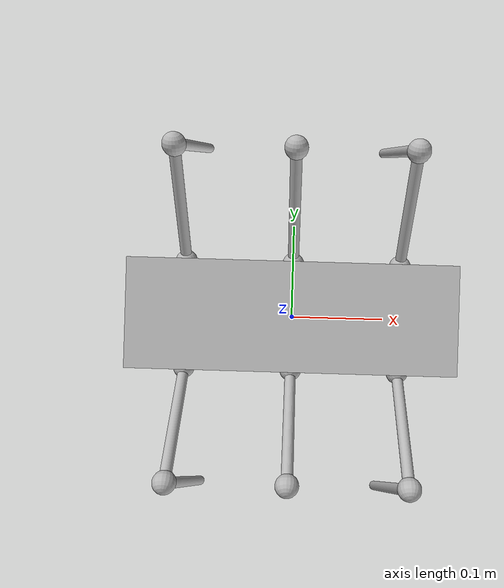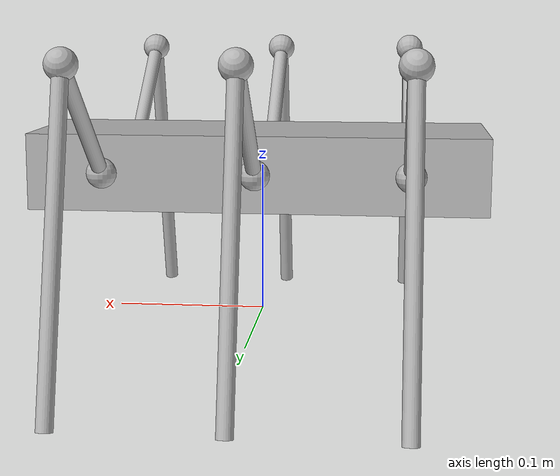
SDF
<?xml version='1.0'?>
<sdf version='1.4'>
  <model name="my_robot">
    <static>false</static>

    <link name='chassis'>
      <pose>0 0 .1 0 0 0</pose>

      <collision name='collision'>
        <geometry>
          <box>
            <size>.3 .1 .05</size>
          </box>
        </geometry>
      </collision>

      <visual name='visual'>
        <geometry>
          <box>
            <size>.3 .1 .05</size>
          </box>
        </geometry>
      </visual>
    </link>

    <link name='leg1'>
      <pose>-0.10 -0.05 .1 0 0 0</pose>

      <collision name='caster_collision'>
        <geometry>
          <sphere>
            <radius>.01</radius>
          </sphere>
        </geometry>

        <surface>
          <friction>
            <ode>
              <mu>0</mu>
              <mu2>0</mu2>
              <slip1>1.0</slip1>
              <slip2>1.0</slip2>
            </ode>
          </friction>
        </surface>
      </collision>

      <visual name='caster_visual'>
        <geometry>
          <sphere>
            <radius>.01</radius>
          </sphere>
        </geometry>
      </visual>
    </link>

    <link name='leg_upper_1'>
      <pose>-0.10 -0.094132 0.137130 0.8660254 0 0</pose>

      <collision name='collision'>
        <geometry>
          <cylinder>
            <radius>.005</radius>
            <length>.1</length>
          </cylinder>
        </geometry>
      </collision>

      <visual name='visual'>
        <geometry>
          <cylinder>
            <radius>.005</radius>
            <length>.1</length>
          </cylinder>
        </geometry>
      </visual>
    </link>

    <link name='leg_upper_ball_1'>
      <pose>-0.10 -0.137859 0.174630 0.8660254 0 0</pose>

      <collision name='collision'>
        <geometry>
          <sphere>
            <radius>.01</radius>
          </sphere>
        </geometry>
      </collision>

      <visual name='visual'>
        <geometry>
          <sphere>
            <radius>.01</radius>
          </sphere>
        </geometry>
      </visual>
    </link>

    <link name='leg_lower_1'>
      <pose>-0.10 -0.165473 0.072745 -0.25881905 0 0</pose>
      <collision name='collision'>
        <geometry>
          <cylinder>
            <radius>.005</radius>
            <length>.2</length>
          </cylinder>
        </geometry>
      </collision>

      <visual name='visual'>
        <geometry>
          <cylinder>
            <radius>.005</radius>
            <length>.2</length>
          </cylinder>
        </geometry>
      </visual>
    </link>

    <joint type="revolute" name="leg1_hinge">
      <child>leg1</child>
      <parent>chassis</parent>
      <axis>
        <xyz>0 1 0</xyz>
      </axis>
    </joint>

    <joint type="revolute" name="leg1_hinge_upper">
      <pose>0 0 -0,05 0 0 0</pose>
      <child>leg_upper_1</child>
      <parent>leg1</parent>
      <axis>
        <xyz>0 1 0</xyz>
      </axis>
    </joint>

    <joint type="revolute" name="leg1_hinge_leg">
      <child>leg_upper_ball_1</child>
      <parent>leg_upper_1</parent>
      <axis>
        <xyz>0 1 0</xyz>
      </axis>
    </joint>

    <joint type="revolute" name="leg1_hinge_leg_lower">
      <pose>0 0 0.1 0 0 0</pose>
      <child>leg_lower_1</child>
      <parent>leg_upper_ball_1</parent>
      <axis>
        <xyz>0 1 0</xyz>
      </axis>
    </joint>

    <link name='leg2'>
      <pose>0 -0.05 .1 0 0 0</pose>

      <collision name='caster_collision'>
        <geometry>
          <sphere>
            <radius>.01</radius>
          </sphere>
        </geometry>

        <surface>
          <friction>
            <ode>
              <mu>0</mu>
              <mu2>0</mu2>
              <slip1>1.0</slip1>
              <slip2>1.0</slip2>
            </ode>
          </friction>
        </surface>
      </collision>

      <visual name='caster_visual'>
        <geometry>
          <sphere>
            <radius>.01</radius>
          </sphere>
        </geometry>
      </visual>
    </link>

    <link name='leg_upper_2'>
      <pose>0 -0.094132 0.137130 0.8660254 0 0</pose>

      <collision name='collision'>
        <geometry>
          <cylinder>
            <radius>.005</radius>
            <length>.1</length>
          </cylinder>
        </geometry>
      </collision>

      <visual name='visual'>
        <geometry>
          <cylinder>
            <radius>.005</radius>
            <length>.1</length>
          </cylinder>
        </geometry>
      </visual>
    </link>

    <link name='leg_upper_ball_2'>
      <pose>0 -0.137859 0.174630 0.8660254 0 0</pose>

      <collision name='collision'>
        <geometry>
          <sphere>
            <radius>.01</radius>
          </sphere>
        </geometry>
      </collision>

      <visual name='visual'>
        <geometry>
          <sphere>
            <radius>.01</radius>
          </sphere>
        </geometry>
      </visual>
    </link>

    <link name='leg_lower_2'>
      <pose>0 -0.165473 0.072745 -0.25881905 0 0</pose>
      <collision name='collision'>
        <geometry>
          <cylinder>
            <radius>.005</radius>
            <length>.2</length>
          </cylinder>
        </geometry>
      </collision>

      <visual name='visual'>
        <geometry>
          <cylinder>
            <radius>.005</radius>
            <length>.2</length>
          </cylinder>
        </geometry>
      </visual>
    </link>

    <joint type="revolute" name="leg2_hinge">
      <child>leg2</child>
      <parent>chassis</parent>
      <axis>
        <xyz>0 1 0</xyz>
      </axis>
    </joint>

    <joint type="revolute" name="leg2_hinge_upper">
      <pose>0 0 -0,05 0 0 0</pose>
      <child>leg_upper_2</child>
      <parent>leg2</parent>
      <axis>
        <xyz>0 1 0</xyz>
      </axis>
    </joint>

    <joint type="revolute" name="leg2_hinge_leg">
      <child>leg_upper_ball_2</child>
      <parent>leg_upper_2</parent>
      <axis>
        <xyz>0 1 0</xyz>
      </axis>
    </joint>

    <joint type="revolute" name="leg2_hinge_leg_lower">
      <pose>0 0 0.1 0 0 0</pose>
      <child>leg_lower_2</child>
      <parent>leg_upper_ball_2</parent>
      <axis>
        <xyz>0 1 0</xyz>
      </axis>
    </joint>

    <link name='leg3'>
      <pose>0.10 -0.05 .1 0 0 0</pose>

      <collision name='caster_collision'>
        <geometry>
          <sphere>
            <radius>.01</radius>
          </sphere>
        </geometry>

        <surface>
          <friction>
            <ode>
              <mu>0</mu>
              <mu2>0</mu2>
              <slip1>1.0</slip1>
              <slip2>1.0</slip2>
            </ode>
          </friction>
        </surface>
      </collision>

      <visual name='caster_visual'>
        <geometry>
          <sphere>
            <radius>.01</radius>
          </sphere>
        </geometry>
      </visual>
    </link>

    <link name='leg_upper_3'>
      <pose>0.10 -0.094132 0.137130 0.8660254 0 0</pose>

      <collision name='collision'>
        <geometry>
          <cylinder>
            <radius>.005</radius>
            <length>.1</length>
          </cylinder>
        </geometry>
      </collision>

      <visual name='visual'>
        <geometry>
          <cylinder>
            <radius>.005</radius>
            <length>.1</length>
          </cylinder>
        </geometry>
      </visual>
    </link>

    <link name='leg_upper_ball_3'>
      <pose>0.10 -0.137859 0.174630 0.8660254 0 0</pose>

      <collision name='collision'>
        <geometry>
          <sphere>
            <radius>.01</radius>
          </sphere>
        </geometry>
      </collision>

      <visual name='visual'>
        <geometry>
          <sphere>
            <radius>.01</radius>
          </sphere>
        </geometry>
      </visual>
    </link>

    <link name='leg_lower_3'>
      <pose>0.10 -0.165473 0.072745 -0.25881905 0 0</pose>
      <collision name='collision'>
        <geometry>
          <cylinder>
            <radius>.005</radius>
            <length>.2</length>
          </cylinder>
        </geometry>
      </collision>

      <visual name='visual'>
        <geometry>
          <cylinder>
            <radius>.005</radius>
            <length>.2</length>
          </cylinder>
        </geometry>
      </visual>
    </link>

    <joint type="revolute" name="leg3_hinge">
      <child>leg3</child>
      <parent>chassis</parent>
      <axis>
        <xyz>0 1 0</xyz>
      </axis>
    </joint>

    <joint type="revolute" name="leg3_hinge_upper">
      <pose>0 0 -0,05 0 0 0</pose>
      <child>leg_upper_3</child>
      <parent>leg3</parent>
      <axis>
        <xyz>0 1 0</xyz>
      </axis>
    </joint>

    <joint type="revolute" name="leg3_hinge_leg">
      <child>leg_upper_ball_3</child>
      <parent>leg_upper_3</parent>
      <axis>
        <xyz>0 1 0</xyz>
      </axis>
    </joint>

    <joint type="revolute" name="leg3_hinge_leg_lower">
      <pose>0 0 0.1 0 0 0</pose>
      <child>leg_lower_3</child>
      <parent>leg_upper_ball_3</parent>
      <axis>
        <xyz>0 1 0</xyz>
      </axis>
    </joint>

    <link name='leg4'>
      <pose>-0.10 0.05 .1 0 0 0</pose>

      <collision name='caster_collision'>
        <geometry>
          <sphere>
            <radius>.01</radius>
          </sphere>
        </geometry>

        <surface>
          <friction>
            <ode>
              <mu>0</mu>
              <mu2>0</mu2>
              <slip1>1.0</slip1>
              <slip2>1.0</slip2>
            </ode>
          </friction>
        </surface>
      </collision>

      <visual name='caster_visual'>
        <geometry>
          <sphere>
            <radius>.01</radius>
          </sphere>
        </geometry>
      </visual>
    </link>

    <link name='leg_upper_4'>
      <pose>-0.10 0.094132 0.137130 -0.8660254 0 0</pose>

      <collision name='collision'>
        <geometry>
          <cylinder>
            <radius>.005</radius>
            <length>.1</length>
          </cylinder>
        </geometry>
      </collision>

      <visual name='visual'>
        <geometry>
          <cylinder>
            <radius>.005</radius>
            <length>.1</length>
          </cylinder>
        </geometry>
      </visual>
    </link>

    <link name='leg_upper_ball_4'>
      <pose>-0.10 0.137859 0.174630 -0.8660254 0 0</pose>

      <collision name='collision'>
        <geometry>
          <sphere>
            <radius>.01</radius>
          </sphere>
        </geometry>
      </collision>

      <visual name='visual'>
        <geometry>
          <sphere>
            <radius>.01</radius>
          </sphere>
        </geometry>
      </visual>
    </link>

    <link name='leg_lower_4'>
      <pose>-0.10 0.165473 0.072745 0.25881905 0 0</pose>
      <collision name='collision'>
        <geometry>
          <cylinder>
            <radius>.005</radius>
            <length>.2</length>
          </cylinder>
        </geometry>
      </collision>

      <visual name='visual'>
        <geometry>
          <cylinder>
            <radius>.005</radius>
            <length>.2</length>
          </cylinder>
        </geometry>
      </visual>
    </link>

    <joint type="revolute" name="leg4_hinge">
      <child>leg4</child>
      <parent>chassis</parent>
      <axis>
        <xyz>0 1 0</xyz>
      </axis>
    </joint>

    <joint type="revolute" name="leg4_hinge_upper">
      <pose>0 0 -0,05 0 0 0</pose>
      <child>leg_upper_4</child>
      <parent>leg4</parent>
      <axis>
        <xyz>0 1 0</xyz>
      </axis>
    </joint>

    <joint type="revolute" name="leg4_hinge_leg">
      <child>leg_upper_ball_4</child>
      <parent>leg_upper_4</parent>
      <axis>
        <xyz>0 1 0</xyz>
      </axis>
    </joint>

    <joint type="revolute" name="leg4_hinge_leg_lower">
      <pose>0 0 0.1 0 0 0</pose>
      <child>leg_lower_4</child>
      <parent>leg_upper_ball_4</parent>
      <axis>
        <xyz>0 1 0</xyz>
      </axis>
    </joint>

    <link name='leg5'>
      <pose>0 0.05 .1 0 0 0</pose>

      <collision name='caster_collision'>
        <geometry>
          <sphere>
            <radius>.01</radius>
          </sphere>
        </geometry>

        <surface>
          <friction>
            <ode>
              <mu>0</mu>
              <mu2>0</mu2>
              <slip1>1.0</slip1>
              <slip2>1.0</slip2>
            </ode>
          </friction>
        </surface>
      </collision>

      <visual name='caster_visual'>
        <geometry>
          <sphere>
            <radius>.01</radius>
          </sphere>
        </geometry>
      </visual>
    </link>

    <link name='leg_upper_5'>
      <pose>0 0.094132 0.137130 -0.8660254 0 0</pose>

      <collision name='collision'>
        <geometry>
          <cylinder>
            <radius>.005</radius>
            <length>.1</length>
          </cylinder>
        </geometry>
      </collision>

      <visual name='visual'>
        <geometry>
          <cylinder>
            <radius>.005</radius>
            <length>.1</length>
          </cylinder>
        </geometry>
      </visual>
    </link>

    <link name='leg_upper_ball_5'>
      <pose>0 0.137859 0.174630 -0.8660254 0 0</pose>

      <collision name='collision'>
        <geometry>
          <sphere>
            <radius>.01</radius>
          </sphere>
        </geometry>
      </collision>

      <visual name='visual'>
        <geometry>
          <sphere>
            <radius>.01</radius>
          </sphere>
        </geometry>
      </visual>
    </link>

    <link name='leg_lower_5'>
      <pose>0 0.165473 0.072745 0.25881905 0 0</pose>
      <collision name='collision'>
        <geometry>
          <cylinder>
            <radius>.005</radius>
            <length>.2</length>
          </cylinder>
        </geometry>
      </collision>

      <visual name='visual'>
        <geometry>
          <cylinder>
            <radius>.005</radius>
            <length>.2</length>
          </cylinder>
        </geometry>
      </visual>
    </link>

    <joint type="revolute" name="leg5_hinge">
      <child>leg5</child>
      <parent>chassis</parent>
      <axis>
        <xyz>0 1 0</xyz>
      </axis>
    </joint>

    <joint type="revolute" name="leg5_hinge_upper">
      <pose>0 0 -0,05 0 0 0</pose>
      <child>leg_upper_5</child>
      <parent>leg5</parent>
      <axis>
        <xyz>0 1 0</xyz>
      </axis>
    </joint>

    <joint type="revolute" name="leg5_hinge_leg">
      <child>leg_upper_ball_5</child>
      <parent>leg_upper_5</parent>
      <axis>
        <xyz>0 1 0</xyz>
      </axis>
    </joint>

    <joint type="revolute" name="leg5_hinge_leg_lower">
      <pose>0 0 0.1 0 0 0</pose>
      <child>leg_lower_5</child>
      <parent>leg_upper_ball_5</parent>
      <axis>
        <xyz>0 1 0</xyz>
      </axis>
    </joint>

    <link name='leg6'>
      <pose>0.10 0.05 .1 0 0 0</pose>

      <collision name='caster_collision'>
        <geometry>
          <sphere>
            <radius>.01</radius>
          </sphere>
        </geometry>

        <surface>
          <friction>
            <ode>
              <mu>0</mu>
              <mu2>0</mu2>
              <slip1>1.0</slip1>
              <slip2>1.0</slip2>
            </ode>
          </friction>
        </surface>
      </collision>

      <visual name='caster_visual'>
        <geometry>
          <sphere>
            <radius>.01</radius>
          </sphere>
        </geometry>
      </visual>
    </link>

    <link name='leg_upper_6'>
      <pose>0.10 0.094132 0.137130 -0.8660254 0 0</pose>

      <collision name='collision'>
        <geometry>
          <cylinder>
            <radius>.005</radius>
            <length>.1</length>
          </cylinder>
        </geometry>
      </collision>

      <visual name='visual'>
        <geometry>
          <cylinder>
            <radius>.005</radius>
            <length>.1</length>
          </cylinder>
        </geometry>
      </visual>
    </link>

    <link name='leg_upper_ball_6'>
      <pose>0.10 0.137859 0.174630 -0.8660254 0 0</pose>

      <collision name='collision'>
        <geometry>
          <sphere>
            <radius>.01</radius>
          </sphere>
        </geometry>
      </collision>

      <visual name='visual'>
        <geometry>
          <sphere>
            <radius>.01</radius>
          </sphere>
        </geometry>
      </visual>
    </link>

    <link name='leg_lower_6'>
      <pose>0.10 0.165473 0.072745 0.25881905 0 0</pose>
      <collision name='collision'>
        <geometry>
          <cylinder>
            <radius>.005</radius>
            <length>.2</length>
          </cylinder>
        </geometry>
      </collision>

      <visual name='visual'>
        <geometry>
          <cylinder>
            <radius>.005</radius>
            <length>.2</length>
          </cylinder>
        </geometry>
      </visual>
    </link>

    <joint type="revolute" name="leg6_hinge">
      <child>leg6</child>
      <parent>chassis</parent>
      <axis>
        <xyz>0 1 0</xyz>
      </axis>
    </joint>

    <joint type="revolute" name="leg6_hinge_upper">
      <pose>0 0 -0,05 0 0 0</pose>
      <child>leg_upper_6</child>
      <parent>leg6</parent>
      <axis>
        <xyz>0 1 0</xyz>
      </axis>
    </joint>

    <joint type="revolute" name="leg6_hinge_leg">
      <child>leg_upper_ball_6</child>
      <parent>leg_upper_6</parent>
      <axis>
        <xyz>0 1 0</xyz>
      </axis>
    </joint>

    <joint type="revolute" name="leg6_hinge_leg_lower">
      <pose>0 0 0.1 0 0 0</pose>
      <child>leg_lower_6</child>
      <parent>leg_upper_ball_6</parent>
      <axis>
        <xyz>0 1 0</xyz>
      </axis>
    </joint>
  </model>
</sdf>
